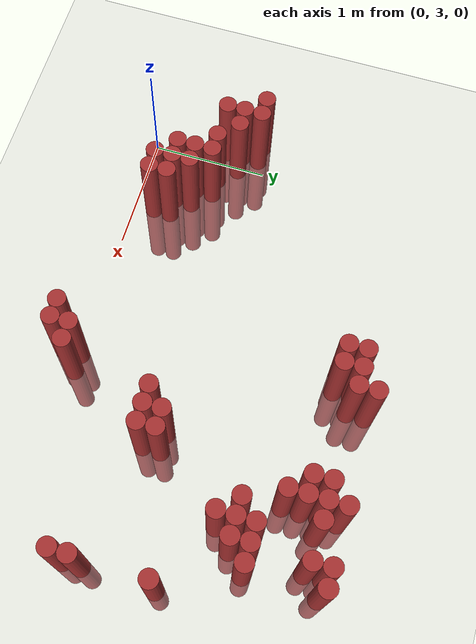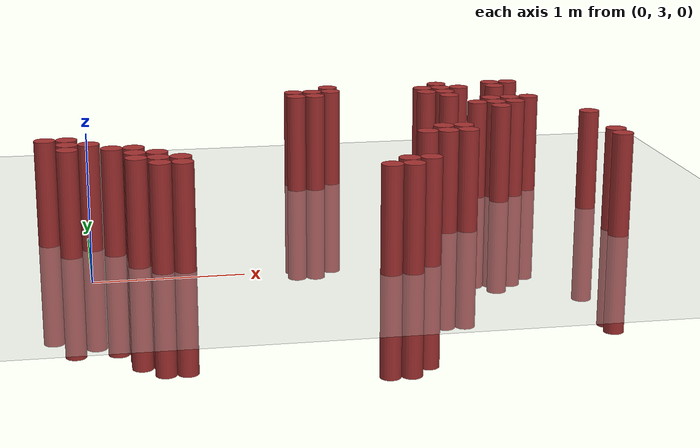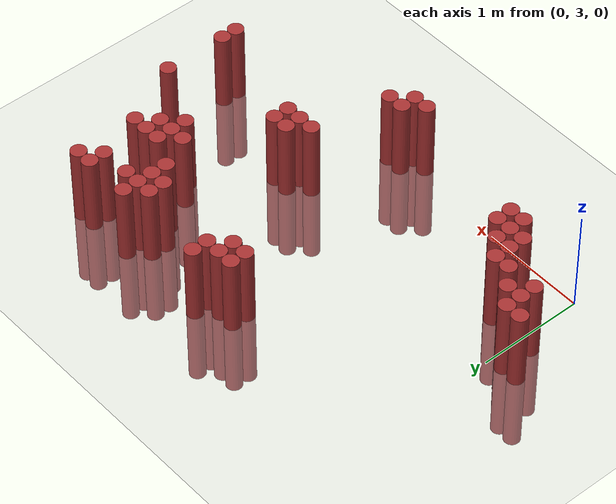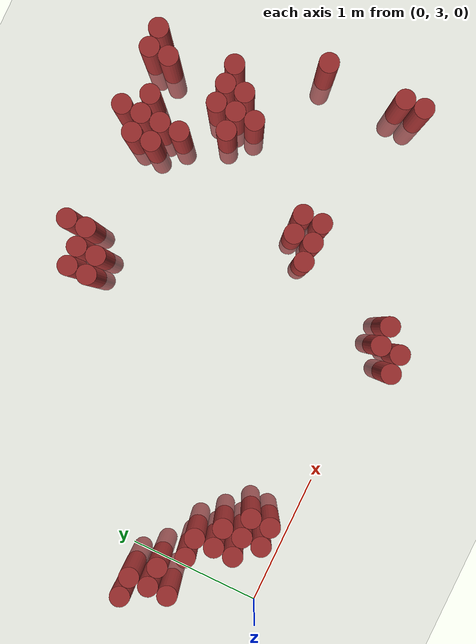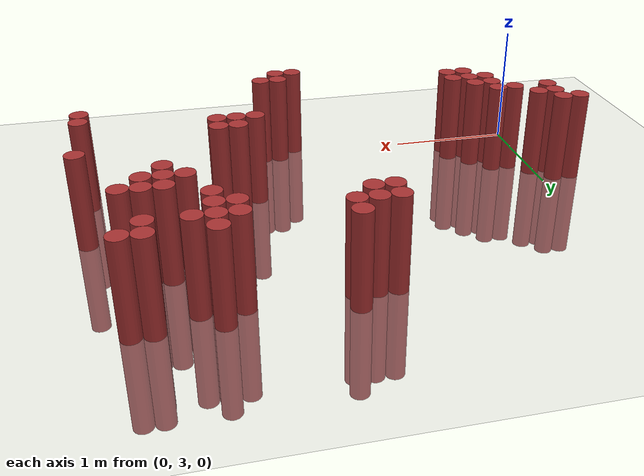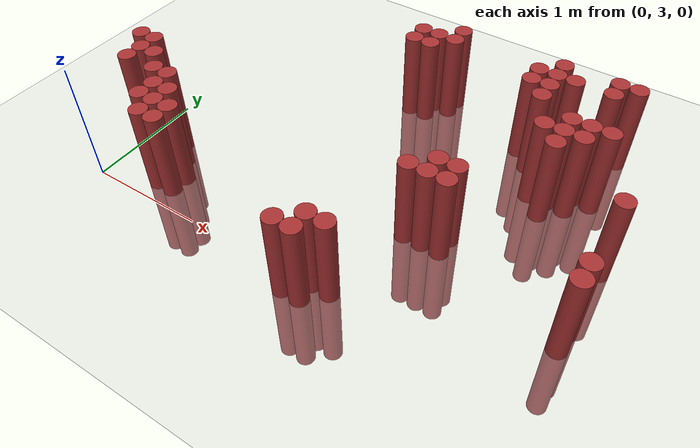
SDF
<sdf version="1.6">
 <world name="default">
  <model name="ground_plane">
   <static>1</static>
   <link name="link">
    <collision name="collision">
     <geometry><plane><normal>0 0 1</normal><size>100 100</size></plane></geometry>
     <surface><friction><ode><mu>100</mu><mu2>50</mu2></ode></friction></surface>
    </collision>
    <visual name="visual">
     <cast_shadows>0</cast_shadows>
     <geometry><plane><normal>0 0 1</normal><size>100 100</size></plane></geometry>
     <material>
      <script><uri>file://media/materials/scripts/gazebo.material</uri><name>Gazebo/Grey</name></script>
     </material>
    </visual>
   </link>
  </model>
  <model name="unit_cylinder_376">
   <static>1</static>
   <pose>-0.275000 3.925000 0.000000 0.000000 0.000000 0.000000</pose>
   <link name="link">
    <inertial>
     <mass>1</mass>
     <inertia><ixx>0.145833</ixx><ixy>0</ixy><ixz>0</ixz><iyy>0.145833</iyy><iyz>0</iyz><izz>0.125</izz></inertia>
    </inertial>
    <collision name="collision">
     <geometry><cylinder><radius>0.075000</radius><length>1.5</length></cylinder></geometry>
    </collision>
    <visual name="visual">
     <geometry><cylinder><radius>0.075000</radius><length>1.5</length></cylinder></geometry>
     <material>
      <ambient>0.648000 0.192000 0.192000 1</ambient>
      <diffuse>0.648000 0.192000 0.192000 1</diffuse>
     </material>
     <material>
      <script><name>Gazebo/Grey</name><uri>file://media/materials/scripts/gazebo.material</uri></script>
     </material>
    </visual>
   </link>
  </model>
  <model name="unit_cylinder_379">
   <static>1</static>
   <pose>-0.125000 3.625000 0.000000 0.000000 0.000000 0.000000</pose>
   <link name="link">
    <inertial>
     <mass>1</mass>
     <inertia><ixx>0.145833</ixx><ixy>0</ixy><ixz>0</ixz><iyy>0.145833</iyy><iyz>0</iyz><izz>0.125</izz></inertia>
    </inertial>
    <collision name="collision">
     <geometry><cylinder><radius>0.075000</radius><length>1.5</length></cylinder></geometry>
    </collision>
    <visual name="visual">
     <geometry><cylinder><radius>0.075000</radius><length>1.5</length></cylinder></geometry>
     <material>
      <ambient>0.648000 0.192000 0.192000 1</ambient>
      <diffuse>0.648000 0.192000 0.192000 1</diffuse>
     </material>
     <material>
      <script><name>Gazebo/Grey</name><uri>file://media/materials/scripts/gazebo.material</uri></script>
     </material>
    </visual>
   </link>
  </model>
  <model name="unit_cylinder_380">
   <static>1</static>
   <pose>-0.125000 3.775000 0.000000 0.000000 0.000000 0.000000</pose>
   <link name="link">
    <inertial>
     <mass>1</mass>
     <inertia><ixx>0.145833</ixx><ixy>0</ixy><ixz>0</ixz><iyy>0.145833</iyy><iyz>0</iyz><izz>0.125</izz></inertia>
    </inertial>
    <collision name="collision">
     <geometry><cylinder><radius>0.075000</radius><length>1.5</length></cylinder></geometry>
    </collision>
    <visual name="visual">
     <geometry><cylinder><radius>0.075000</radius><length>1.5</length></cylinder></geometry>
     <material>
      <ambient>0.648000 0.192000 0.192000 1</ambient>
      <diffuse>0.648000 0.192000 0.192000 1</diffuse>
     </material>
     <material>
      <script><name>Gazebo/Grey</name><uri>file://media/materials/scripts/gazebo.material</uri></script>
     </material>
    </visual>
   </link>
  </model>
  <model name="unit_cylinder_381">
   <static>1</static>
   <pose>-0.125000 3.925000 0.000000 0.000000 0.000000 0.000000</pose>
   <link name="link">
    <inertial>
     <mass>1</mass>
     <inertia><ixx>0.145833</ixx><ixy>0</ixy><ixz>0</ixz><iyy>0.145833</iyy><iyz>0</iyz><izz>0.125</izz></inertia>
    </inertial>
    <collision name="collision">
     <geometry><cylinder><radius>0.075000</radius><length>1.5</length></cylinder></geometry>
    </collision>
    <visual name="visual">
     <geometry><cylinder><radius>0.075000</radius><length>1.5</length></cylinder></geometry>
     <material>
      <ambient>0.648000 0.192000 0.192000 1</ambient>
      <diffuse>0.648000 0.192000 0.192000 1</diffuse>
     </material>
     <material>
      <script><name>Gazebo/Grey</name><uri>file://media/materials/scripts/gazebo.material</uri></script>
     </material>
    </visual>
   </link>
  </model>
  <model name="unit_cylinder_384">
   <static>1</static>
   <pose>0.025000 3.775000 0.000000 0.000000 0.000000 0.000000</pose>
   <link name="link">
    <inertial>
     <mass>1</mass>
     <inertia><ixx>0.145833</ixx><ixy>0</ixy><ixz>0</ixz><iyy>0.145833</iyy><iyz>0</iyz><izz>0.125</izz></inertia>
    </inertial>
    <collision name="collision">
     <geometry><cylinder><radius>0.075000</radius><length>1.5</length></cylinder></geometry>
    </collision>
    <visual name="visual">
     <geometry><cylinder><radius>0.075000</radius><length>1.5</length></cylinder></geometry>
     <material>
      <ambient>0.648000 0.192000 0.192000 1</ambient>
      <diffuse>0.648000 0.192000 0.192000 1</diffuse>
     </material>
     <material>
      <script><name>Gazebo/Grey</name><uri>file://media/materials/scripts/gazebo.material</uri></script>
     </material>
    </visual>
   </link>
  </model>
  <model name="unit_cylinder_391">
   <static>1</static>
   <pose>0.175000 3.625000 0.000000 0.000000 0.000000 0.000000</pose>
   <link name="link">
    <inertial>
     <mass>1</mass>
     <inertia><ixx>0.145833</ixx><ixy>0</ixy><ixz>0</ixz><iyy>0.145833</iyy><iyz>0</iyz><izz>0.125</izz></inertia>
    </inertial>
    <collision name="collision">
     <geometry><cylinder><radius>0.075000</radius><length>1.5</length></cylinder></geometry>
    </collision>
    <visual name="visual">
     <geometry><cylinder><radius>0.075000</radius><length>1.5</length></cylinder></geometry>
     <material>
      <ambient>0.648000 0.192000 0.192000 1</ambient>
      <diffuse>0.648000 0.192000 0.192000 1</diffuse>
     </material>
     <material>
      <script><name>Gazebo/Grey</name><uri>file://media/materials/scripts/gazebo.material</uri></script>
     </material>
    </visual>
   </link>
  </model>
  <model name="unit_cylinder_397">
   <static>1</static>
   <pose>0.325000 3.325000 0.000000 0.000000 0.000000 0.000000</pose>
   <link name="link">
    <inertial>
     <mass>1</mass>
     <inertia><ixx>0.145833</ixx><ixy>0</ixy><ixz>0</ixz><iyy>0.145833</iyy><iyz>0</iyz><izz>0.125</izz></inertia>
    </inertial>
    <collision name="collision">
     <geometry><cylinder><radius>0.075000</radius><length>1.5</length></cylinder></geometry>
    </collision>
    <visual name="visual">
     <geometry><cylinder><radius>0.075000</radius><length>1.5</length></cylinder></geometry>
     <material>
      <ambient>0.648000 0.192000 0.192000 1</ambient>
      <diffuse>0.648000 0.192000 0.192000 1</diffuse>
     </material>
     <material>
      <script><name>Gazebo/Grey</name><uri>file://media/materials/scripts/gazebo.material</uri></script>
     </material>
    </visual>
   </link>
  </model>
  <model name="unit_cylinder_398">
   <static>1</static>
   <pose>0.325000 3.475000 0.000000 0.000000 0.000000 0.000000</pose>
   <link name="link">
    <inertial>
     <mass>1</mass>
     <inertia><ixx>0.145833</ixx><ixy>0</ixy><ixz>0</ixz><iyy>0.145833</iyy><iyz>0</iyz><izz>0.125</izz></inertia>
    </inertial>
    <collision name="collision">
     <geometry><cylinder><radius>0.075000</radius><length>1.5</length></cylinder></geometry>
    </collision>
    <visual name="visual">
     <geometry><cylinder><radius>0.075000</radius><length>1.5</length></cylinder></geometry>
     <material>
      <ambient>0.648000 0.192000 0.192000 1</ambient>
      <diffuse>0.648000 0.192000 0.192000 1</diffuse>
     </material>
     <material>
      <script><name>Gazebo/Grey</name><uri>file://media/materials/scripts/gazebo.material</uri></script>
     </material>
    </visual>
   </link>
  </model>
  <model name="unit_cylinder_399">
   <static>1</static>
   <pose>0.325000 3.625000 0.000000 0.000000 0.000000 0.000000</pose>
   <link name="link">
    <inertial>
     <mass>1</mass>
     <inertia><ixx>0.145833</ixx><ixy>0</ixy><ixz>0</ixz><iyy>0.145833</iyy><iyz>0</iyz><izz>0.125</izz></inertia>
    </inertial>
    <collision name="collision">
     <geometry><cylinder><radius>0.075000</radius><length>1.5</length></cylinder></geometry>
    </collision>
    <visual name="visual">
     <geometry><cylinder><radius>0.075000</radius><length>1.5</length></cylinder></geometry>
     <material>
      <ambient>0.648000 0.192000 0.192000 1</ambient>
      <diffuse>0.648000 0.192000 0.192000 1</diffuse>
     </material>
     <material>
      <script><name>Gazebo/Grey</name><uri>file://media/materials/scripts/gazebo.material</uri></script>
     </material>
    </visual>
   </link>
  </model>
  <model name="unit_cylinder_403">
   <static>1</static>
   <pose>0.475000 3.175000 0.000000 0.000000 0.000000 0.000000</pose>
   <link name="link">
    <inertial>
     <mass>1</mass>
     <inertia><ixx>0.145833</ixx><ixy>0</ixy><ixz>0</ixz><iyy>0.145833</iyy><iyz>0</iyz><izz>0.125</izz></inertia>
    </inertial>
    <collision name="collision">
     <geometry><cylinder><radius>0.075000</radius><length>1.5</length></cylinder></geometry>
    </collision>
    <visual name="visual">
     <geometry><cylinder><radius>0.075000</radius><length>1.5</length></cylinder></geometry>
     <material>
      <ambient>0.648000 0.192000 0.192000 1</ambient>
      <diffuse>0.648000 0.192000 0.192000 1</diffuse>
     </material>
     <material>
      <script><name>Gazebo/Grey</name><uri>file://media/materials/scripts/gazebo.material</uri></script>
     </material>
    </visual>
   </link>
  </model>
  <model name="unit_cylinder_404">
   <static>1</static>
   <pose>0.475000 3.325000 0.000000 0.000000 0.000000 0.000000</pose>
   <link name="link">
    <inertial>
     <mass>1</mass>
     <inertia><ixx>0.145833</ixx><ixy>0</ixy><ixz>0</ixz><iyy>0.145833</iyy><iyz>0</iyz><izz>0.125</izz></inertia>
    </inertial>
    <collision name="collision">
     <geometry><cylinder><radius>0.075000</radius><length>1.5</length></cylinder></geometry>
    </collision>
    <visual name="visual">
     <geometry><cylinder><radius>0.075000</radius><length>1.5</length></cylinder></geometry>
     <material>
      <ambient>0.648000 0.192000 0.192000 1</ambient>
      <diffuse>0.648000 0.192000 0.192000 1</diffuse>
     </material>
     <material>
      <script><name>Gazebo/Grey</name><uri>file://media/materials/scripts/gazebo.material</uri></script>
     </material>
    </visual>
   </link>
  </model>
  <model name="unit_cylinder_405">
   <static>1</static>
   <pose>0.475000 3.475000 0.000000 0.000000 0.000000 0.000000</pose>
   <link name="link">
    <inertial>
     <mass>1</mass>
     <inertia><ixx>0.145833</ixx><ixy>0</ixy><ixz>0</ixz><iyy>0.145833</iyy><iyz>0</iyz><izz>0.125</izz></inertia>
    </inertial>
    <collision name="collision">
     <geometry><cylinder><radius>0.075000</radius><length>1.5</length></cylinder></geometry>
    </collision>
    <visual name="visual">
     <geometry><cylinder><radius>0.075000</radius><length>1.5</length></cylinder></geometry>
     <material>
      <ambient>0.648000 0.192000 0.192000 1</ambient>
      <diffuse>0.648000 0.192000 0.192000 1</diffuse>
     </material>
     <material>
      <script><name>Gazebo/Grey</name><uri>file://media/materials/scripts/gazebo.material</uri></script>
     </material>
    </visual>
   </link>
  </model>
  <model name="unit_cylinder_409">
   <static>1</static>
   <pose>0.625000 3.175000 0.000000 0.000000 0.000000 0.000000</pose>
   <link name="link">
    <inertial>
     <mass>1</mass>
     <inertia><ixx>0.145833</ixx><ixy>0</ixy><ixz>0</ixz><iyy>0.145833</iyy><iyz>0</iyz><izz>0.125</izz></inertia>
    </inertial>
    <collision name="collision">
     <geometry><cylinder><radius>0.075000</radius><length>1.5</length></cylinder></geometry>
    </collision>
    <visual name="visual">
     <geometry><cylinder><radius>0.075000</radius><length>1.5</length></cylinder></geometry>
     <material>
      <ambient>0.648000 0.192000 0.192000 1</ambient>
      <diffuse>0.648000 0.192000 0.192000 1</diffuse>
     </material>
     <material>
      <script><name>Gazebo/Grey</name><uri>file://media/materials/scripts/gazebo.material</uri></script>
     </material>
    </visual>
   </link>
  </model>
  <model name="unit_cylinder_410">
   <static>1</static>
   <pose>0.625000 3.325000 0.000000 0.000000 0.000000 0.000000</pose>
   <link name="link">
    <inertial>
     <mass>1</mass>
     <inertia><ixx>0.145833</ixx><ixy>0</ixy><ixz>0</ixz><iyy>0.145833</iyy><iyz>0</iyz><izz>0.125</izz></inertia>
    </inertial>
    <collision name="collision">
     <geometry><cylinder><radius>0.075000</radius><length>1.5</length></cylinder></geometry>
    </collision>
    <visual name="visual">
     <geometry><cylinder><radius>0.075000</radius><length>1.5</length></cylinder></geometry>
     <material>
      <ambient>0.648000 0.192000 0.192000 1</ambient>
      <diffuse>0.648000 0.192000 0.192000 1</diffuse>
     </material>
     <material>
      <script><name>Gazebo/Grey</name><uri>file://media/materials/scripts/gazebo.material</uri></script>
     </material>
    </visual>
   </link>
  </model>
  <model name="unit_cylinder_414">
   <static>1</static>
   <pose>1.675000 5.125000 0.000000 0.000000 0.000000 0.000000</pose>
   <link name="link">
    <inertial>
     <mass>1</mass>
     <inertia><ixx>0.145833</ixx><ixy>0</ixy><ixz>0</ixz><iyy>0.145833</iyy><iyz>0</iyz><izz>0.125</izz></inertia>
    </inertial>
    <collision name="collision">
     <geometry><cylinder><radius>0.075000</radius><length>1.5</length></cylinder></geometry>
    </collision>
    <visual name="visual">
     <geometry><cylinder><radius>0.075000</radius><length>1.5</length></cylinder></geometry>
     <material>
      <ambient>0.648000 0.192000 0.192000 1</ambient>
      <diffuse>0.648000 0.192000 0.192000 1</diffuse>
     </material>
     <material>
      <script><name>Gazebo/Grey</name><uri>file://media/materials/scripts/gazebo.material</uri></script>
     </material>
    </visual>
   </link>
  </model>
  <model name="unit_cylinder_415">
   <static>1</static>
   <pose>1.675000 5.275000 0.000000 0.000000 0.000000 0.000000</pose>
   <link name="link">
    <inertial>
     <mass>1</mass>
     <inertia><ixx>0.145833</ixx><ixy>0</ixy><ixz>0</ixz><iyy>0.145833</iyy><iyz>0</iyz><izz>0.125</izz></inertia>
    </inertial>
    <collision name="collision">
     <geometry><cylinder><radius>0.075000</radius><length>1.5</length></cylinder></geometry>
    </collision>
    <visual name="visual">
     <geometry><cylinder><radius>0.075000</radius><length>1.5</length></cylinder></geometry>
     <material>
      <ambient>0.648000 0.192000 0.192000 1</ambient>
      <diffuse>0.648000 0.192000 0.192000 1</diffuse>
     </material>
     <material>
      <script><name>Gazebo/Grey</name><uri>file://media/materials/scripts/gazebo.material</uri></script>
     </material>
    </visual>
   </link>
  </model>
  <model name="unit_cylinder_418">
   <static>1</static>
   <pose>1.825000 5.125000 0.000000 0.000000 0.000000 0.000000</pose>
   <link name="link">
    <inertial>
     <mass>1</mass>
     <inertia><ixx>0.145833</ixx><ixy>0</ixy><ixz>0</ixz><iyy>0.145833</iyy><iyz>0</iyz><izz>0.125</izz></inertia>
    </inertial>
    <collision name="collision">
     <geometry><cylinder><radius>0.075000</radius><length>1.5</length></cylinder></geometry>
    </collision>
    <visual name="visual">
     <geometry><cylinder><radius>0.075000</radius><length>1.5</length></cylinder></geometry>
     <material>
      <ambient>0.648000 0.192000 0.192000 1</ambient>
      <diffuse>0.648000 0.192000 0.192000 1</diffuse>
     </material>
     <material>
      <script><name>Gazebo/Grey</name><uri>file://media/materials/scripts/gazebo.material</uri></script>
     </material>
    </visual>
   </link>
  </model>
  <model name="unit_cylinder_419">
   <static>1</static>
   <pose>1.825000 5.275000 0.000000 0.000000 0.000000 0.000000</pose>
   <link name="link">
    <inertial>
     <mass>1</mass>
     <inertia><ixx>0.145833</ixx><ixy>0</ixy><ixz>0</ixz><iyy>0.145833</iyy><iyz>0</iyz><izz>0.125</izz></inertia>
    </inertial>
    <collision name="collision">
     <geometry><cylinder><radius>0.075000</radius><length>1.5</length></cylinder></geometry>
    </collision>
    <visual name="visual">
     <geometry><cylinder><radius>0.075000</radius><length>1.5</length></cylinder></geometry>
     <material>
      <ambient>0.648000 0.192000 0.192000 1</ambient>
      <diffuse>0.648000 0.192000 0.192000 1</diffuse>
     </material>
     <material>
      <script><name>Gazebo/Grey</name><uri>file://media/materials/scripts/gazebo.material</uri></script>
     </material>
    </visual>
   </link>
  </model>
  <model name="unit_cylinder_423">
   <static>1</static>
   <pose>1.975000 2.875000 0.000000 0.000000 0.000000 0.000000</pose>
   <link name="link">
    <inertial>
     <mass>1</mass>
     <inertia><ixx>0.145833</ixx><ixy>0</ixy><ixz>0</ixz><iyy>0.145833</iyy><iyz>0</iyz><izz>0.125</izz></inertia>
    </inertial>
    <collision name="collision">
     <geometry><cylinder><radius>0.075000</radius><length>1.5</length></cylinder></geometry>
    </collision>
    <visual name="visual">
     <geometry><cylinder><radius>0.075000</radius><length>1.5</length></cylinder></geometry>
     <material>
      <ambient>0.648000 0.192000 0.192000 1</ambient>
      <diffuse>0.648000 0.192000 0.192000 1</diffuse>
     </material>
     <material>
      <script><name>Gazebo/Grey</name><uri>file://media/materials/scripts/gazebo.material</uri></script>
     </material>
    </visual>
   </link>
  </model>
  <model name="unit_cylinder_424">
   <static>1</static>
   <pose>1.975000 5.275000 0.000000 0.000000 0.000000 0.000000</pose>
   <link name="link">
    <inertial>
     <mass>1</mass>
     <inertia><ixx>0.145833</ixx><ixy>0</ixy><ixz>0</ixz><iyy>0.145833</iyy><iyz>0</iyz><izz>0.125</izz></inertia>
    </inertial>
    <collision name="collision">
     <geometry><cylinder><radius>0.075000</radius><length>1.5</length></cylinder></geometry>
    </collision>
    <visual name="visual">
     <geometry><cylinder><radius>0.075000</radius><length>1.5</length></cylinder></geometry>
     <material>
      <ambient>0.648000 0.192000 0.192000 1</ambient>
      <diffuse>0.648000 0.192000 0.192000 1</diffuse>
     </material>
     <material>
      <script><name>Gazebo/Grey</name><uri>file://media/materials/scripts/gazebo.material</uri></script>
     </material>
    </visual>
   </link>
  </model>
  <model name="unit_cylinder_425">
   <static>1</static>
   <pose>1.975000 5.425000 0.000000 0.000000 0.000000 0.000000</pose>
   <link name="link">
    <inertial>
     <mass>1</mass>
     <inertia><ixx>0.145833</ixx><ixy>0</ixy><ixz>0</ixz><iyy>0.145833</iyy><iyz>0</iyz><izz>0.125</izz></inertia>
    </inertial>
    <collision name="collision">
     <geometry><cylinder><radius>0.075000</radius><length>1.5</length></cylinder></geometry>
    </collision>
    <visual name="visual">
     <geometry><cylinder><radius>0.075000</radius><length>1.5</length></cylinder></geometry>
     <material>
      <ambient>0.648000 0.192000 0.192000 1</ambient>
      <diffuse>0.648000 0.192000 0.192000 1</diffuse>
     </material>
     <material>
      <script><name>Gazebo/Grey</name><uri>file://media/materials/scripts/gazebo.material</uri></script>
     </material>
    </visual>
   </link>
  </model>
  <model name="unit_cylinder_428">
   <static>1</static>
   <pose>2.125000 2.875000 0.000000 0.000000 0.000000 0.000000</pose>
   <link name="link">
    <inertial>
     <mass>1</mass>
     <inertia><ixx>0.145833</ixx><ixy>0</ixy><ixz>0</ixz><iyy>0.145833</iyy><iyz>0</iyz><izz>0.125</izz></inertia>
    </inertial>
    <collision name="collision">
     <geometry><cylinder><radius>0.075000</radius><length>1.5</length></cylinder></geometry>
    </collision>
    <visual name="visual">
     <geometry><cylinder><radius>0.075000</radius><length>1.5</length></cylinder></geometry>
     <material>
      <ambient>0.648000 0.192000 0.192000 1</ambient>
      <diffuse>0.648000 0.192000 0.192000 1</diffuse>
     </material>
     <material>
      <script><name>Gazebo/Grey</name><uri>file://media/materials/scripts/gazebo.material</uri></script>
     </material>
    </visual>
   </link>
  </model>
  <model name="unit_cylinder_429">
   <static>1</static>
   <pose>2.125000 3.025000 0.000000 0.000000 0.000000 0.000000</pose>
   <link name="link">
    <inertial>
     <mass>1</mass>
     <inertia><ixx>0.145833</ixx><ixy>0</ixy><ixz>0</ixz><iyy>0.145833</iyy><iyz>0</iyz><izz>0.125</izz></inertia>
    </inertial>
    <collision name="collision">
     <geometry><cylinder><radius>0.075000</radius><length>1.5</length></cylinder></geometry>
    </collision>
    <visual name="visual">
     <geometry><cylinder><radius>0.075000</radius><length>1.5</length></cylinder></geometry>
     <material>
      <ambient>0.648000 0.192000 0.192000 1</ambient>
      <diffuse>0.648000 0.192000 0.192000 1</diffuse>
     </material>
     <material>
      <script><name>Gazebo/Grey</name><uri>file://media/materials/scripts/gazebo.material</uri></script>
     </material>
    </visual>
   </link>
  </model>
  <model name="unit_cylinder_430">
   <static>1</static>
   <pose>2.275000 3.025000 0.000000 0.000000 0.000000 0.000000</pose>
   <link name="link">
    <inertial>
     <mass>1</mass>
     <inertia><ixx>0.145833</ixx><ixy>0</ixy><ixz>0</ixz><iyy>0.145833</iyy><iyz>0</iyz><izz>0.125</izz></inertia>
    </inertial>
    <collision name="collision">
     <geometry><cylinder><radius>0.075000</radius><length>1.5</length></cylinder></geometry>
    </collision>
    <visual name="visual">
     <geometry><cylinder><radius>0.075000</radius><length>1.5</length></cylinder></geometry>
     <material>
      <ambient>0.648000 0.192000 0.192000 1</ambient>
      <diffuse>0.648000 0.192000 0.192000 1</diffuse>
     </material>
     <material>
      <script><name>Gazebo/Grey</name><uri>file://media/materials/scripts/gazebo.material</uri></script>
     </material>
    </visual>
   </link>
  </model>
  <model name="unit_cylinder_431">
   <static>1</static>
   <pose>2.425000 3.775000 0.000000 0.000000 0.000000 0.000000</pose>
   <link name="link">
    <inertial>
     <mass>1</mass>
     <inertia><ixx>0.145833</ixx><ixy>0</ixy><ixz>0</ixz><iyy>0.145833</iyy><iyz>0</iyz><izz>0.125</izz></inertia>
    </inertial>
    <collision name="collision">
     <geometry><cylinder><radius>0.075000</radius><length>1.5</length></cylinder></geometry>
    </collision>
    <visual name="visual">
     <geometry><cylinder><radius>0.075000</radius><length>1.5</length></cylinder></geometry>
     <material>
      <ambient>0.648000 0.192000 0.192000 1</ambient>
      <diffuse>0.648000 0.192000 0.192000 1</diffuse>
     </material>
     <material>
      <script><name>Gazebo/Grey</name><uri>file://media/materials/scripts/gazebo.material</uri></script>
     </material>
    </visual>
   </link>
  </model>
  <model name="unit_cylinder_437">
   <static>1</static>
   <pose>2.575000 3.775000 0.000000 0.000000 0.000000 0.000000</pose>
   <link name="link">
    <inertial>
     <mass>1</mass>
     <inertia><ixx>0.145833</ixx><ixy>0</ixy><ixz>0</ixz><iyy>0.145833</iyy><iyz>0</iyz><izz>0.125</izz></inertia>
    </inertial>
    <collision name="collision">
     <geometry><cylinder><radius>0.075000</radius><length>1.5</length></cylinder></geometry>
    </collision>
    <visual name="visual">
     <geometry><cylinder><radius>0.075000</radius><length>1.5</length></cylinder></geometry>
     <material>
      <ambient>0.648000 0.192000 0.192000 1</ambient>
      <diffuse>0.648000 0.192000 0.192000 1</diffuse>
     </material>
     <material>
      <script><name>Gazebo/Grey</name><uri>file://media/materials/scripts/gazebo.material</uri></script>
     </material>
    </visual>
   </link>
  </model>
  <model name="unit_cylinder_438">
   <static>1</static>
   <pose>2.575000 3.925000 0.000000 0.000000 0.000000 0.000000</pose>
   <link name="link">
    <inertial>
     <mass>1</mass>
     <inertia><ixx>0.145833</ixx><ixy>0</ixy><ixz>0</ixz><iyy>0.145833</iyy><iyz>0</iyz><izz>0.125</izz></inertia>
    </inertial>
    <collision name="collision">
     <geometry><cylinder><radius>0.075000</radius><length>1.5</length></cylinder></geometry>
    </collision>
    <visual name="visual">
     <geometry><cylinder><radius>0.075000</radius><length>1.5</length></cylinder></geometry>
     <material>
      <ambient>0.648000 0.192000 0.192000 1</ambient>
      <diffuse>0.648000 0.192000 0.192000 1</diffuse>
     </material>
     <material>
      <script><name>Gazebo/Grey</name><uri>file://media/materials/scripts/gazebo.material</uri></script>
     </material>
    </visual>
   </link>
  </model>
  <model name="unit_cylinder_447">
   <static>1</static>
   <pose>2.725000 3.775000 0.000000 0.000000 0.000000 0.000000</pose>
   <link name="link">
    <inertial>
     <mass>1</mass>
     <inertia><ixx>0.145833</ixx><ixy>0</ixy><ixz>0</ixz><iyy>0.145833</iyy><iyz>0</iyz><izz>0.125</izz></inertia>
    </inertial>
    <collision name="collision">
     <geometry><cylinder><radius>0.075000</radius><length>1.5</length></cylinder></geometry>
    </collision>
    <visual name="visual">
     <geometry><cylinder><radius>0.075000</radius><length>1.5</length></cylinder></geometry>
     <material>
      <ambient>0.648000 0.192000 0.192000 1</ambient>
      <diffuse>0.648000 0.192000 0.192000 1</diffuse>
     </material>
     <material>
      <script><name>Gazebo/Grey</name><uri>file://media/materials/scripts/gazebo.material</uri></script>
     </material>
    </visual>
   </link>
  </model>
  <model name="unit_cylinder_448">
   <static>1</static>
   <pose>2.725000 3.925000 0.000000 0.000000 0.000000 0.000000</pose>
   <link name="link">
    <inertial>
     <mass>1</mass>
     <inertia><ixx>0.145833</ixx><ixy>0</ixy><ixz>0</ixz><iyy>0.145833</iyy><iyz>0</iyz><izz>0.125</izz></inertia>
    </inertial>
    <collision name="collision">
     <geometry><cylinder><radius>0.075000</radius><length>1.5</length></cylinder></geometry>
    </collision>
    <visual name="visual">
     <geometry><cylinder><radius>0.075000</radius><length>1.5</length></cylinder></geometry>
     <material>
      <ambient>0.648000 0.192000 0.192000 1</ambient>
      <diffuse>0.648000 0.192000 0.192000 1</diffuse>
     </material>
     <material>
      <script><name>Gazebo/Grey</name><uri>file://media/materials/scripts/gazebo.material</uri></script>
     </material>
    </visual>
   </link>
  </model>
  <model name="unit_cylinder_449">
   <static>1</static>
   <pose>2.725000 5.125000 0.000000 0.000000 0.000000 0.000000</pose>
   <link name="link">
    <inertial>
     <mass>1</mass>
     <inertia><ixx>0.145833</ixx><ixy>0</ixy><ixz>0</ixz><iyy>0.145833</iyy><iyz>0</iyz><izz>0.125</izz></inertia>
    </inertial>
    <collision name="collision">
     <geometry><cylinder><radius>0.075000</radius><length>1.5</length></cylinder></geometry>
    </collision>
    <visual name="visual">
     <geometry><cylinder><radius>0.075000</radius><length>1.5</length></cylinder></geometry>
     <material>
      <ambient>0.648000 0.192000 0.192000 1</ambient>
      <diffuse>0.648000 0.192000 0.192000 1</diffuse>
     </material>
     <material>
      <script><name>Gazebo/Grey</name><uri>file://media/materials/scripts/gazebo.material</uri></script>
     </material>
    </visual>
   </link>
  </model>
  <model name="unit_cylinder_450">
   <static>1</static>
   <pose>2.725000 5.275000 0.000000 0.000000 0.000000 0.000000</pose>
   <link name="link">
    <inertial>
     <mass>1</mass>
     <inertia><ixx>0.145833</ixx><ixy>0</ixy><ixz>0</ixz><iyy>0.145833</iyy><iyz>0</iyz><izz>0.125</izz></inertia>
    </inertial>
    <collision name="collision">
     <geometry><cylinder><radius>0.075000</radius><length>1.5</length></cylinder></geometry>
    </collision>
    <visual name="visual">
     <geometry><cylinder><radius>0.075000</radius><length>1.5</length></cylinder></geometry>
     <material>
      <ambient>0.648000 0.192000 0.192000 1</ambient>
      <diffuse>0.648000 0.192000 0.192000 1</diffuse>
     </material>
     <material>
      <script><name>Gazebo/Grey</name><uri>file://media/materials/scripts/gazebo.material</uri></script>
     </material>
    </visual>
   </link>
  </model>
  <model name="unit_cylinder_454">
   <static>1</static>
   <pose>2.875000 4.975000 0.000000 0.000000 0.000000 0.000000</pose>
   <link name="link">
    <inertial>
     <mass>1</mass>
     <inertia><ixx>0.145833</ixx><ixy>0</ixy><ixz>0</ixz><iyy>0.145833</iyy><iyz>0</iyz><izz>0.125</izz></inertia>
    </inertial>
    <collision name="collision">
     <geometry><cylinder><radius>0.075000</radius><length>1.5</length></cylinder></geometry>
    </collision>
    <visual name="visual">
     <geometry><cylinder><radius>0.075000</radius><length>1.5</length></cylinder></geometry>
     <material>
      <ambient>0.648000 0.192000 0.192000 1</ambient>
      <diffuse>0.648000 0.192000 0.192000 1</diffuse>
     </material>
     <material>
      <script><name>Gazebo/Grey</name><uri>file://media/materials/scripts/gazebo.material</uri></script>
     </material>
    </visual>
   </link>
  </model>
  <model name="unit_cylinder_455">
   <static>1</static>
   <pose>2.875000 5.125000 0.000000 0.000000 0.000000 0.000000</pose>
   <link name="link">
    <inertial>
     <mass>1</mass>
     <inertia><ixx>0.145833</ixx><ixy>0</ixy><ixz>0</ixz><iyy>0.145833</iyy><iyz>0</iyz><izz>0.125</izz></inertia>
    </inertial>
    <collision name="collision">
     <geometry><cylinder><radius>0.075000</radius><length>1.5</length></cylinder></geometry>
    </collision>
    <visual name="visual">
     <geometry><cylinder><radius>0.075000</radius><length>1.5</length></cylinder></geometry>
     <material>
      <ambient>0.648000 0.192000 0.192000 1</ambient>
      <diffuse>0.648000 0.192000 0.192000 1</diffuse>
     </material>
     <material>
      <script><name>Gazebo/Grey</name><uri>file://media/materials/scripts/gazebo.material</uri></script>
     </material>
    </visual>
   </link>
  </model>
  <model name="unit_cylinder_456">
   <static>1</static>
   <pose>2.875000 5.275000 0.000000 0.000000 0.000000 0.000000</pose>
   <link name="link">
    <inertial>
     <mass>1</mass>
     <inertia><ixx>0.145833</ixx><ixy>0</ixy><ixz>0</ixz><iyy>0.145833</iyy><iyz>0</iyz><izz>0.125</izz></inertia>
    </inertial>
    <collision name="collision">
     <geometry><cylinder><radius>0.075000</radius><length>1.5</length></cylinder></geometry>
    </collision>
    <visual name="visual">
     <geometry><cylinder><radius>0.075000</radius><length>1.5</length></cylinder></geometry>
     <material>
      <ambient>0.648000 0.192000 0.192000 1</ambient>
      <diffuse>0.648000 0.192000 0.192000 1</diffuse>
     </material>
     <material>
      <script><name>Gazebo/Grey</name><uri>file://media/materials/scripts/gazebo.material</uri></script>
     </material>
    </visual>
   </link>
  </model>
  <model name="unit_cylinder_457">
   <static>1</static>
   <pose>2.875000 5.425000 0.000000 0.000000 0.000000 0.000000</pose>
   <link name="link">
    <inertial>
     <mass>1</mass>
     <inertia><ixx>0.145833</ixx><ixy>0</ixy><ixz>0</ixz><iyy>0.145833</iyy><iyz>0</iyz><izz>0.125</izz></inertia>
    </inertial>
    <collision name="collision">
     <geometry><cylinder><radius>0.075000</radius><length>1.5</length></cylinder></geometry>
    </collision>
    <visual name="visual">
     <geometry><cylinder><radius>0.075000</radius><length>1.5</length></cylinder></geometry>
     <material>
      <ambient>0.648000 0.192000 0.192000 1</ambient>
      <diffuse>0.648000 0.192000 0.192000 1</diffuse>
     </material>
     <material>
      <script><name>Gazebo/Grey</name><uri>file://media/materials/scripts/gazebo.material</uri></script>
     </material>
    </visual>
   </link>
  </model>
  <model name="unit_cylinder_460">
   <static>1</static>
   <pose>3.025000 4.675000 0.000000 0.000000 0.000000 0.000000</pose>
   <link name="link">
    <inertial>
     <mass>1</mass>
     <inertia><ixx>0.145833</ixx><ixy>0</ixy><ixz>0</ixz><iyy>0.145833</iyy><iyz>0</iyz><izz>0.125</izz></inertia>
    </inertial>
    <collision name="collision">
     <geometry><cylinder><radius>0.075000</radius><length>1.5</length></cylinder></geometry>
    </collision>
    <visual name="visual">
     <geometry><cylinder><radius>0.075000</radius><length>1.5</length></cylinder></geometry>
     <material>
      <ambient>0.648000 0.192000 0.192000 1</ambient>
      <diffuse>0.648000 0.192000 0.192000 1</diffuse>
     </material>
     <material>
      <script><name>Gazebo/Grey</name><uri>file://media/materials/scripts/gazebo.material</uri></script>
     </material>
    </visual>
   </link>
  </model>
  <model name="unit_cylinder_461">
   <static>1</static>
   <pose>3.025000 5.275000 0.000000 0.000000 0.000000 0.000000</pose>
   <link name="link">
    <inertial>
     <mass>1</mass>
     <inertia><ixx>0.145833</ixx><ixy>0</ixy><ixz>0</ixz><iyy>0.145833</iyy><iyz>0</iyz><izz>0.125</izz></inertia>
    </inertial>
    <collision name="collision">
     <geometry><cylinder><radius>0.075000</radius><length>1.5</length></cylinder></geometry>
    </collision>
    <visual name="visual">
     <geometry><cylinder><radius>0.075000</radius><length>1.5</length></cylinder></geometry>
     <material>
      <ambient>0.648000 0.192000 0.192000 1</ambient>
      <diffuse>0.648000 0.192000 0.192000 1</diffuse>
     </material>
     <material>
      <script><name>Gazebo/Grey</name><uri>file://media/materials/scripts/gazebo.material</uri></script>
     </material>
    </visual>
   </link>
  </model>
  <model name="unit_cylinder_462">
   <static>1</static>
   <pose>3.175000 4.525000 0.000000 0.000000 0.000000 0.000000</pose>
   <link name="link">
    <inertial>
     <mass>1</mass>
     <inertia><ixx>0.145833</ixx><ixy>0</ixy><ixz>0</ixz><iyy>0.145833</iyy><iyz>0</iyz><izz>0.125</izz></inertia>
    </inertial>
    <collision name="collision">
     <geometry><cylinder><radius>0.075000</radius><length>1.5</length></cylinder></geometry>
    </collision>
    <visual name="visual">
     <geometry><cylinder><radius>0.075000</radius><length>1.5</length></cylinder></geometry>
     <material>
      <ambient>0.648000 0.192000 0.192000 1</ambient>
      <diffuse>0.648000 0.192000 0.192000 1</diffuse>
     </material>
     <material>
      <script><name>Gazebo/Grey</name><uri>file://media/materials/scripts/gazebo.material</uri></script>
     </material>
    </visual>
   </link>
  </model>
  <model name="unit_cylinder_463">
   <static>1</static>
   <pose>3.175000 4.675000 0.000000 0.000000 0.000000 0.000000</pose>
   <link name="link">
    <inertial>
     <mass>1</mass>
     <inertia><ixx>0.145833</ixx><ixy>0</ixy><ixz>0</ixz><iyy>0.145833</iyy><iyz>0</iyz><izz>0.125</izz></inertia>
    </inertial>
    <collision name="collision">
     <geometry><cylinder><radius>0.075000</radius><length>1.5</length></cylinder></geometry>
    </collision>
    <visual name="visual">
     <geometry><cylinder><radius>0.075000</radius><length>1.5</length></cylinder></geometry>
     <material>
      <ambient>0.648000 0.192000 0.192000 1</ambient>
      <diffuse>0.648000 0.192000 0.192000 1</diffuse>
     </material>
     <material>
      <script><name>Gazebo/Grey</name><uri>file://media/materials/scripts/gazebo.material</uri></script>
     </material>
    </visual>
   </link>
  </model>
  <model name="unit_cylinder_464">
   <static>1</static>
   <pose>3.175000 4.825000 0.000000 0.000000 0.000000 0.000000</pose>
   <link name="link">
    <inertial>
     <mass>1</mass>
     <inertia><ixx>0.145833</ixx><ixy>0</ixy><ixz>0</ixz><iyy>0.145833</iyy><iyz>0</iyz><izz>0.125</izz></inertia>
    </inertial>
    <collision name="collision">
     <geometry><cylinder><radius>0.075000</radius><length>1.5</length></cylinder></geometry>
    </collision>
    <visual name="visual">
     <geometry><cylinder><radius>0.075000</radius><length>1.5</length></cylinder></geometry>
     <material>
      <ambient>0.648000 0.192000 0.192000 1</ambient>
      <diffuse>0.648000 0.192000 0.192000 1</diffuse>
     </material>
     <material>
      <script><name>Gazebo/Grey</name><uri>file://media/materials/scripts/gazebo.material</uri></script>
     </material>
    </visual>
   </link>
  </model>
  <model name="unit_cylinder_465">
   <static>1</static>
   <pose>3.325000 4.675000 0.000000 0.000000 0.000000 0.000000</pose>
   <link name="link">
    <inertial>
     <mass>1</mass>
     <inertia><ixx>0.145833</ixx><ixy>0</ixy><ixz>0</ixz><iyy>0.145833</iyy><iyz>0</iyz><izz>0.125</izz></inertia>
    </inertial>
    <collision name="collision">
     <geometry><cylinder><radius>0.075000</radius><length>1.5</length></cylinder></geometry>
    </collision>
    <visual name="visual">
     <geometry><cylinder><radius>0.075000</radius><length>1.5</length></cylinder></geometry>
     <material>
      <ambient>0.648000 0.192000 0.192000 1</ambient>
      <diffuse>0.648000 0.192000 0.192000 1</diffuse>
     </material>
     <material>
      <script><name>Gazebo/Grey</name><uri>file://media/materials/scripts/gazebo.material</uri></script>
     </material>
    </visual>
   </link>
  </model>
  <model name="unit_cylinder_466">
   <static>1</static>
   <pose>3.325000 4.825000 0.000000 0.000000 0.000000 0.000000</pose>
   <link name="link">
    <inertial>
     <mass>1</mass>
     <inertia><ixx>0.145833</ixx><ixy>0</ixy><ixz>0</ixz><iyy>0.145833</iyy><iyz>0</iyz><izz>0.125</izz></inertia>
    </inertial>
    <collision name="collision">
     <geometry><cylinder><radius>0.075000</radius><length>1.5</length></cylinder></geometry>
    </collision>
    <visual name="visual">
     <geometry><cylinder><radius>0.075000</radius><length>1.5</length></cylinder></geometry>
     <material>
      <ambient>0.648000 0.192000 0.192000 1</ambient>
      <diffuse>0.648000 0.192000 0.192000 1</diffuse>
     </material>
     <material>
      <script><name>Gazebo/Grey</name><uri>file://media/materials/scripts/gazebo.material</uri></script>
     </material>
    </visual>
   </link>
  </model>
  <model name="unit_cylinder_467">
   <static>1</static>
   <pose>3.325000 5.275000 0.000000 0.000000 0.000000 0.000000</pose>
   <link name="link">
    <inertial>
     <mass>1</mass>
     <inertia><ixx>0.145833</ixx><ixy>0</ixy><ixz>0</ixz><iyy>0.145833</iyy><iyz>0</iyz><izz>0.125</izz></inertia>
    </inertial>
    <collision name="collision">
     <geometry><cylinder><radius>0.075000</radius><length>1.5</length></cylinder></geometry>
    </collision>
    <visual name="visual">
     <geometry><cylinder><radius>0.075000</radius><length>1.5</length></cylinder></geometry>
     <material>
      <ambient>0.648000 0.192000 0.192000 1</ambient>
      <diffuse>0.648000 0.192000 0.192000 1</diffuse>
     </material>
     <material>
      <script><name>Gazebo/Grey</name><uri>file://media/materials/scripts/gazebo.material</uri></script>
     </material>
    </visual>
   </link>
  </model>
  <model name="unit_cylinder_468">
   <static>1</static>
   <pose>3.325000 5.425000 0.000000 0.000000 0.000000 0.000000</pose>
   <link name="link">
    <inertial>
     <mass>1</mass>
     <inertia><ixx>0.145833</ixx><ixy>0</ixy><ixz>0</ixz><iyy>0.145833</iyy><iyz>0</iyz><izz>0.125</izz></inertia>
    </inertial>
    <collision name="collision">
     <geometry><cylinder><radius>0.075000</radius><length>1.5</length></cylinder></geometry>
    </collision>
    <visual name="visual">
     <geometry><cylinder><radius>0.075000</radius><length>1.5</length></cylinder></geometry>
     <material>
      <ambient>0.648000 0.192000 0.192000 1</ambient>
      <diffuse>0.648000 0.192000 0.192000 1</diffuse>
     </material>
     <material>
      <script><name>Gazebo/Grey</name><uri>file://media/materials/scripts/gazebo.material</uri></script>
     </material>
    </visual>
   </link>
  </model>
  <model name="unit_cylinder_470">
   <static>1</static>
   <pose>3.475000 4.825000 0.000000 0.000000 0.000000 0.000000</pose>
   <link name="link">
    <inertial>
     <mass>1</mass>
     <inertia><ixx>0.145833</ixx><ixy>0</ixy><ixz>0</ixz><iyy>0.145833</iyy><iyz>0</iyz><izz>0.125</izz></inertia>
    </inertial>
    <collision name="collision">
     <geometry><cylinder><radius>0.075000</radius><length>1.5</length></cylinder></geometry>
    </collision>
    <visual name="visual">
     <geometry><cylinder><radius>0.075000</radius><length>1.5</length></cylinder></geometry>
     <material>
      <ambient>0.648000 0.192000 0.192000 1</ambient>
      <diffuse>0.648000 0.192000 0.192000 1</diffuse>
     </material>
     <material>
      <script><name>Gazebo/Grey</name><uri>file://media/materials/scripts/gazebo.material</uri></script>
     </material>
    </visual>
   </link>
  </model>
  <model name="unit_cylinder_471">
   <static>1</static>
   <pose>3.475000 5.425000 0.000000 0.000000 0.000000 0.000000</pose>
   <link name="link">
    <inertial>
     <mass>1</mass>
     <inertia><ixx>0.145833</ixx><ixy>0</ixy><ixz>0</ixz><iyy>0.145833</iyy><iyz>0</iyz><izz>0.125</izz></inertia>
    </inertial>
    <collision name="collision">
     <geometry><cylinder><radius>0.075000</radius><length>1.5</length></cylinder></geometry>
    </collision>
    <visual name="visual">
     <geometry><cylinder><radius>0.075000</radius><length>1.5</length></cylinder></geometry>
     <material>
      <ambient>0.648000 0.192000 0.192000 1</ambient>
      <diffuse>0.648000 0.192000 0.192000 1</diffuse>
     </material>
     <material>
      <script><name>Gazebo/Grey</name><uri>file://media/materials/scripts/gazebo.material</uri></script>
     </material>
    </visual>
   </link>
  </model>
  <model name="unit_cylinder_491">
   <static>1</static>
   <pose>3.775000 3.475000 0.000000 0.000000 0.000000 0.000000</pose>
   <link name="link">
    <inertial>
     <mass>1</mass>
     <inertia><ixx>0.145833</ixx><ixy>0</ixy><ixz>0</ixz><iyy>0.145833</iyy><iyz>0</iyz><izz>0.125</izz></inertia>
    </inertial>
    <collision name="collision">
     <geometry><cylinder><radius>0.075000</radius><length>1.5</length></cylinder></geometry>
    </collision>
    <visual name="visual">
     <geometry><cylinder><radius>0.075000</radius><length>1.5</length></cylinder></geometry>
     <material>
      <ambient>0.648000 0.192000 0.192000 1</ambient>
      <diffuse>0.648000 0.192000 0.192000 1</diffuse>
     </material>
     <material>
      <script><name>Gazebo/Grey</name><uri>file://media/materials/scripts/gazebo.material</uri></script>
     </material>
    </visual>
   </link>
  </model>
  <model name="unit_cylinder_492">
   <static>1</static>
   <pose>3.775000 3.625000 0.000000 0.000000 0.000000 0.000000</pose>
   <link name="link">
    <inertial>
     <mass>1</mass>
     <inertia><ixx>0.145833</ixx><ixy>0</ixy><ixz>0</ixz><iyy>0.145833</iyy><iyz>0</iyz><izz>0.125</izz></inertia>
    </inertial>
    <collision name="collision">
     <geometry><cylinder><radius>0.075000</radius><length>1.5</length></cylinder></geometry>
    </collision>
    <visual name="visual">
     <geometry><cylinder><radius>0.075000</radius><length>1.5</length></cylinder></geometry>
     <material>
      <ambient>0.648000 0.192000 0.192000 1</ambient>
      <diffuse>0.648000 0.192000 0.192000 1</diffuse>
     </material>
     <material>
      <script><name>Gazebo/Grey</name><uri>file://media/materials/scripts/gazebo.material</uri></script>
     </material>
    </visual>
   </link>
  </model>
  <model name="unit_cylinder_493">
   <static>1</static>
   <pose>3.775000 4.225000 0.000000 0.000000 0.000000 0.000000</pose>
   <link name="link">
    <inertial>
     <mass>1</mass>
     <inertia><ixx>0.145833</ixx><ixy>0</ixy><ixz>0</ixz><iyy>0.145833</iyy><iyz>0</iyz><izz>0.125</izz></inertia>
    </inertial>
    <collision name="collision">
     <geometry><cylinder><radius>0.075000</radius><length>1.5</length></cylinder></geometry>
    </collision>
    <visual name="visual">
     <geometry><cylinder><radius>0.075000</radius><length>1.5</length></cylinder></geometry>
     <material>
      <ambient>0.648000 0.192000 0.192000 1</ambient>
      <diffuse>0.648000 0.192000 0.192000 1</diffuse>
     </material>
     <material>
      <script><name>Gazebo/Grey</name><uri>file://media/materials/scripts/gazebo.material</uri></script>
     </material>
    </visual>
   </link>
  </model>
 </world>
</sdf>
